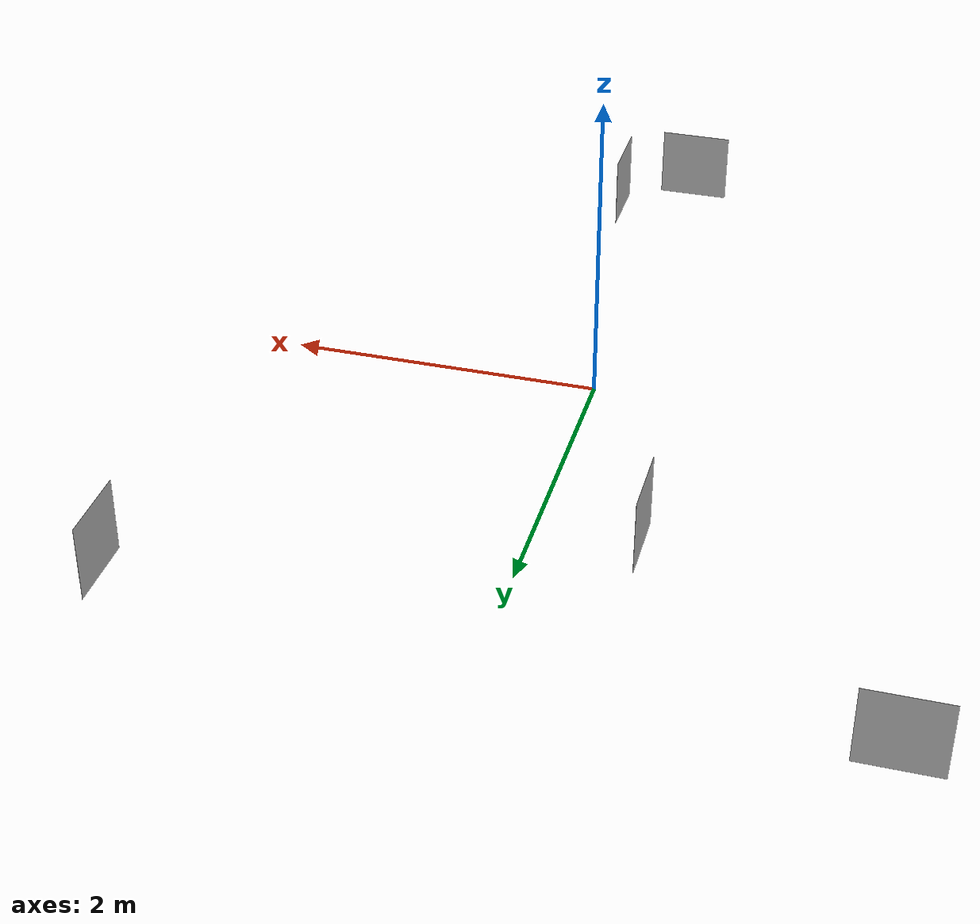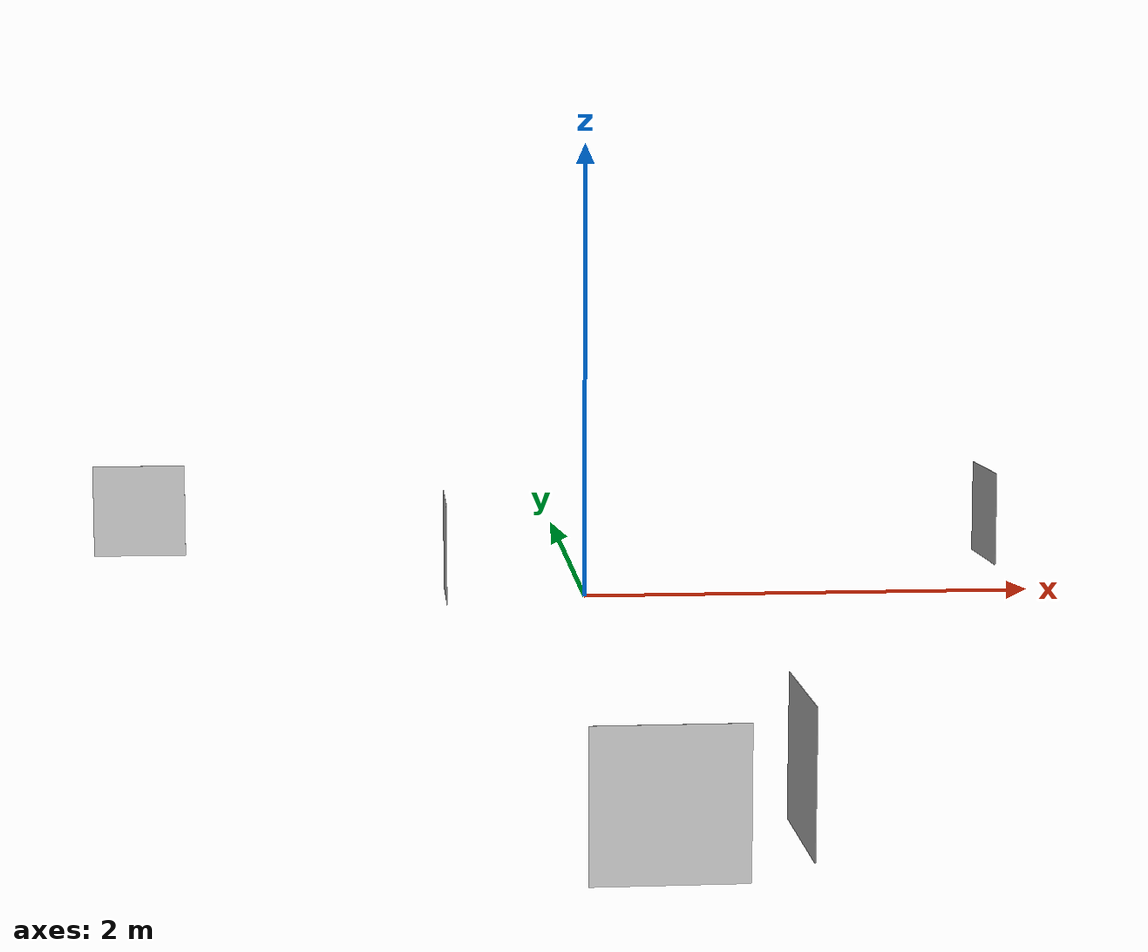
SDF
<?xml version='1.0'?>
<sdf version='1.7'>
  <model name='maze_with_qr'>
    <model name='qr_code_1'>
      <static>1</static>
      <link name='qr_code_1_link'>
        <pose>0 0 0.001 0 -0 1.5708</pose>
        <visual name='visual_qr_code_1'>
          <cast_shadows>0</cast_shadows>
          <geometry>
            <box>
              <size>0.5 0.5 0.001</size>
            </box>
          </geometry>
          <material>
            <script>
              <uri>model://qr_code_1/materials/scripts</uri>
              <uri>model://qr_code_1/materials/textures</uri>
              <name>qr_code_1/qr_code_1</name>
            </script>
          </material>
        </visual>
      </link>
      <pose>0.437044 -2.90144 0.011834 3.14159 1.56722 3.14159</pose>
    </model>
    <model name='qr_code_1_0'>
      <static>1</static>
      <link name='qr_code_1_link'>
        <pose>0 0 0.001 0 -0 1.5708</pose>
        <visual name='visual_qr_code_1'>
          <cast_shadows>0</cast_shadows>
          <geometry>
            <box>
              <size>0.5 0.5 0.001</size>
            </box>
          </geometry>
          <material>
            <script>
              <uri>model://qr_code_1/materials/scripts</uri>
              <uri>model://qr_code_1/materials/textures</uri>
              <name>qr_code_1/qr_code_1</name>
            </script>
          </material>
        </visual>
      </link>
      <pose>-0.583664 1.24796 0.01516 3.14159 -1.56762 3.14159</pose>
    </model>
    <model name='qr_code_2'>
      <static>1</static>
      <link name='qr_code_2_link'>
        <pose>0 0 0.001 0 -0 1.5708</pose>
        <visual name='visual_qr_code_2'>
          <cast_shadows>0</cast_shadows>
          <geometry>
            <box>
              <size>0.5 0.5 0.001</size>
            </box>
          </geometry>
          <material>
            <script>
              <uri>model://qr_code_2/materials/scripts</uri>
              <uri>model://qr_code_2/materials/textures</uri>
              <name>qr_code_2/qr_code_2</name>
            </script>
          </material>
        </visual>
      </link>
      <pose>2.41537 2.28481 -0.017491 3.14159 -1.56853 3.14159</pose>
    </model>
    <model name='qr_code_2_0'>
      <static>1</static>
      <link name='qr_code_2_link'>
        <pose>0 0 0.001 0 -0 1.5708</pose>
        <visual name='visual_qr_code_2'>
          <cast_shadows>0</cast_shadows>
          <geometry>
            <box>
              <size>0.5 0.5 0.001</size>
            </box>
          </geometry>
          <material>
            <script>
              <uri>model://qr_code_2/materials/scripts</uri>
              <uri>model://qr_code_2/materials/textures</uri>
              <name>qr_code_2/qr_code_2</name>
            </script>
          </material>
        </visual>
      </link>
      <pose>-2.23014 2.67091 -0.015303 1.57315 -0 0</pose>
    </model>
    <model name='qr_code_2_1'>
      <static>1</static>
      <link name='qr_code_2_link'>
        <pose>0 0 0.001 0 -0 1.5708</pose>
        <visual name='visual_qr_code_2'>
          <cast_shadows>0</cast_shadows>
          <geometry>
            <box>
              <size>0.5 0.5 0.001</size>
            </box>
          </geometry>
          <material>
            <script>
              <uri>model://qr_code_2/materials/scripts</uri>
              <uri>model://qr_code_2/materials/textures</uri>
              <name>qr_code_2/qr_code_2</name>
            </script>
          </material>
        </visual>
      </link>
      <pose>-0.038613 -3.30224 0.0058 -1.57024 0 0</pose>
    </model>
    <static>0</static>
    <allow_auto_disable>1</allow_auto_disable>
  </model>
</sdf>
